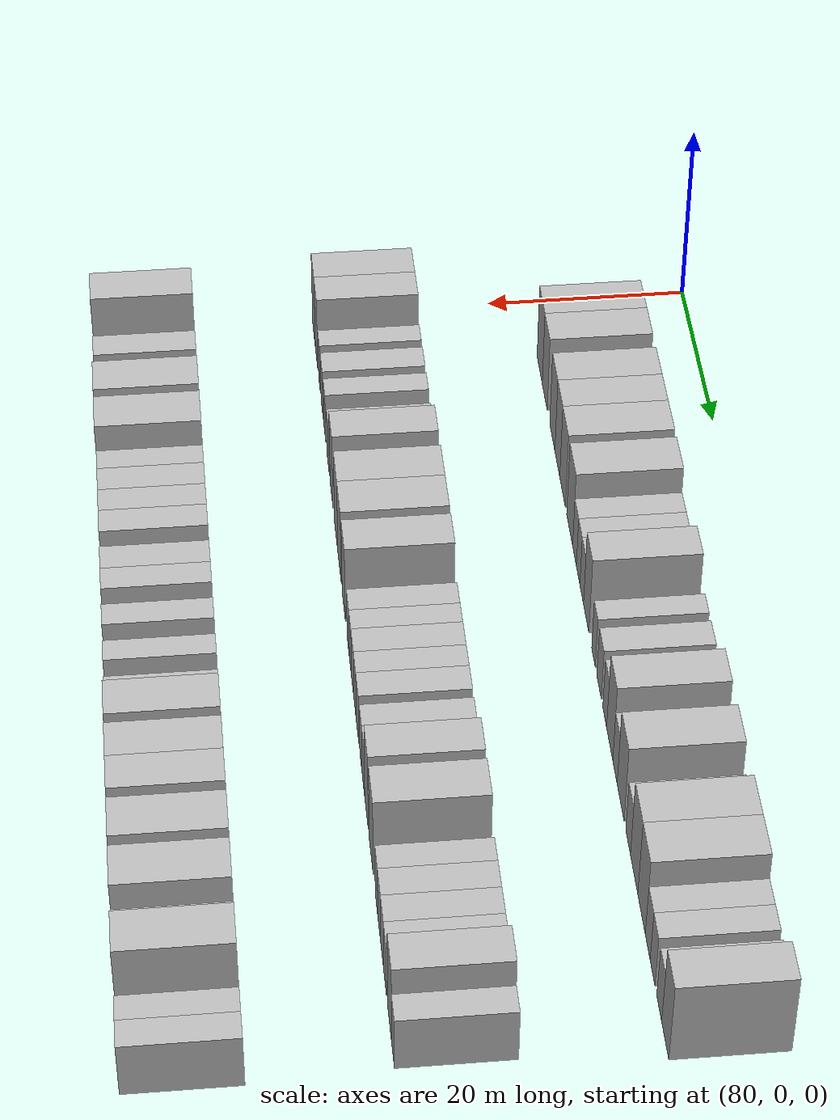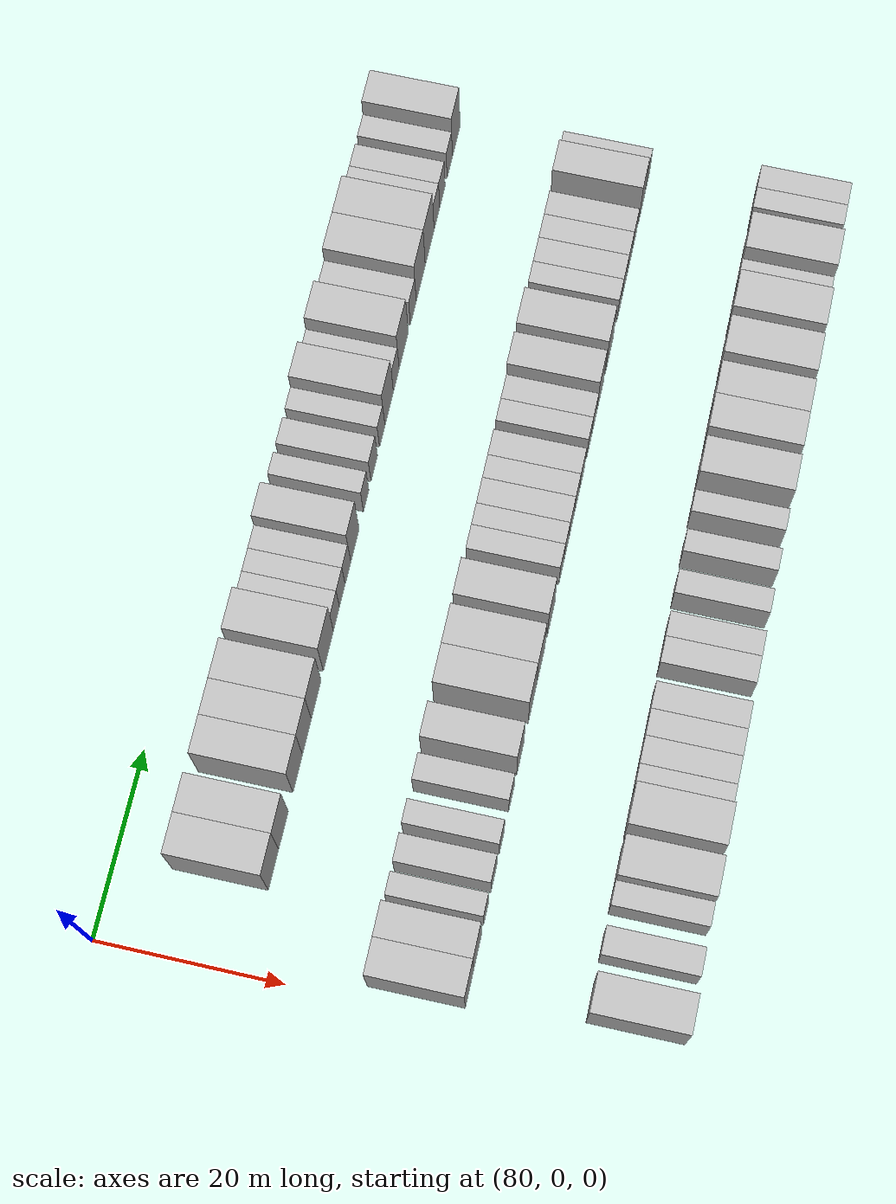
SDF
<sdf version="1.6">
 <world name="default">
  <model name="building_688">
   <static>1</static>
   <pose>91.0000 10.8664 0 0.000000 0.000000 0.000000</pose>
   <link name="link">
    <pose>0 0 4.50 0 0 0</pose>
    <collision name="collision"><geometry><box><size>10.0000 4.2561 9.0000</size></box></geometry></collision>
    <visual name="visual">
     <cast_shadows>0</cast_shadows>
     <geometry><box><size>10.0000 4.2561 9.0000</size></box></geometry>
     <material>
      <script>
       <uri>model://HANNAS_wall/materials/scripts</uri>
       <uri>model://HANNAS_wall/materials/textures</uri>
       <name>vrc/HANNAS_wall</name>
      </script>
     </material>
    </visual>
   </link>
  </model>
  <model name="building_689">
   <static>1</static>
   <pose>91.0000 15.0073 0 0.000000 0.000000 0.000000</pose>
   <link name="link">
    <pose>0 0 4.50 0 0 0</pose>
    <collision name="collision"><geometry><box><size>10.0000 4.0257 9.0000</size></box></geometry></collision>
    <visual name="visual">
     <cast_shadows>0</cast_shadows>
     <geometry><box><size>10.0000 4.0257 9.0000</size></box></geometry>
     <material>
      <script>
       <uri>model://HANNAS_wall/materials/scripts</uri>
       <uri>model://HANNAS_wall/materials/textures</uri>
       <name>vrc/HANNAS_wall</name>
      </script>
     </material>
    </visual>
   </link>
  </model>
  <model name="building_690">
   <static>1</static>
   <pose>91.0000 21.0378 0 0.000000 0.000000 0.000000</pose>
   <link name="link">
    <pose>0 0 4.50 0 0 0</pose>
    <collision name="collision"><geometry><box><size>10.0000 4.0353 9.0000</size></box></geometry></collision>
    <visual name="visual">
     <cast_shadows>0</cast_shadows>
     <geometry><box><size>10.0000 4.0353 9.0000</size></box></geometry>
     <material>
      <script>
       <uri>model://HANNAS_wall/materials/scripts</uri>
       <uri>model://HANNAS_wall/materials/textures</uri>
       <name>vrc/HANNAS_wall</name>
      </script>
     </material>
    </visual>
   </link>
  </model>
  <model name="building_691">
   <static>1</static>
   <pose>91.0000 24.9680 0 0.000000 0.000000 0.000000</pose>
   <link name="link">
    <pose>0 0 4.50 0 0 0</pose>
    <collision name="collision"><geometry><box><size>10.0000 3.8252 9.0000</size></box></geometry></collision>
    <visual name="visual">
     <cast_shadows>0</cast_shadows>
     <geometry><box><size>10.0000 3.8252 9.0000</size></box></geometry>
     <material>
      <script>
       <uri>model://HANNAS_wall/materials/scripts</uri>
       <uri>model://HANNAS_wall/materials/textures</uri>
       <name>vrc/HANNAS_wall</name>
      </script>
     </material>
    </visual>
   </link>
  </model>
  <model name="building_692">
   <static>1</static>
   <pose>91.0000 29.0085 0 0.000000 0.000000 0.000000</pose>
   <link name="link">
    <pose>0 0 4.50 0 0 0</pose>
    <collision name="collision"><geometry><box><size>10.0000 4.2557 9.0000</size></box></geometry></collision>
    <visual name="visual">
     <cast_shadows>0</cast_shadows>
     <geometry><box><size>10.0000 4.2557 9.0000</size></box></geometry>
     <material>
      <script>
       <uri>model://HANNAS_wall/materials/scripts</uri>
       <uri>model://HANNAS_wall/materials/textures</uri>
       <name>vrc/HANNAS_wall</name>
      </script>
     </material>
    </visual>
   </link>
  </model>
  <model name="building_693">
   <static>1</static>
   <pose>91.0000 34.3529 0 0.000000 0.000000 0.000000</pose>
   <link name="link">
    <pose>0 0 4.50 0 0 0</pose>
    <collision name="collision"><geometry><box><size>10.0000 4.4330 9.0000</size></box></geometry></collision>
    <visual name="visual">
     <cast_shadows>0</cast_shadows>
     <geometry><box><size>10.0000 4.4330 9.0000</size></box></geometry>
     <material>
      <script>
       <uri>model://HANNAS_wall/materials/scripts</uri>
       <uri>model://HANNAS_wall/materials/textures</uri>
       <name>vrc/HANNAS_wall</name>
      </script>
     </material>
    </visual>
   </link>
  </model>
  <model name="building_694">
   <static>1</static>
   <pose>91.0000 37.9192 0 0.000000 0.000000 0.000000</pose>
   <link name="link">
    <pose>0 0 3.00 0 0 0</pose>
    <collision name="collision"><geometry><box><size>10.0000 2.6996 6.0000</size></box></geometry></collision>
    <visual name="visual">
     <cast_shadows>0</cast_shadows>
     <geometry><box><size>10.0000 2.6996 6.0000</size></box></geometry>
     <material>
      <script>
       <uri>model://HANNAS_wall/materials/scripts</uri>
       <uri>model://HANNAS_wall/materials/textures</uri>
       <name>vrc/HANNAS_wall</name>
      </script>
     </material>
    </visual>
   </link>
  </model>
  <model name="building_695">
   <static>1</static>
   <pose>91.0000 40.5392 0 0.000000 0.000000 0.000000</pose>
   <link name="link">
    <pose>0 0 3.00 0 0 0</pose>
    <collision name="collision"><geometry><box><size>10.0000 2.5404 6.0000</size></box></geometry></collision>
    <visual name="visual">
     <cast_shadows>0</cast_shadows>
     <geometry><box><size>10.0000 2.5404 6.0000</size></box></geometry>
     <material>
      <script>
       <uri>model://HANNAS_wall/materials/scripts</uri>
       <uri>model://HANNAS_wall/materials/textures</uri>
       <name>vrc/HANNAS_wall</name>
      </script>
     </material>
    </visual>
   </link>
  </model>
  <model name="building_696">
   <static>1</static>
   <pose>91.0000 43.0936 0 0.000000 0.000000 0.000000</pose>
   <link name="link">
    <pose>0 0 3.00 0 0 0</pose>
    <collision name="collision"><geometry><box><size>10.0000 2.5684 6.0000</size></box></geometry></collision>
    <visual name="visual">
     <cast_shadows>0</cast_shadows>
     <geometry><box><size>10.0000 2.5684 6.0000</size></box></geometry>
     <material>
      <script>
       <uri>model://HANNAS_wall/materials/scripts</uri>
       <uri>model://HANNAS_wall/materials/textures</uri>
       <name>vrc/HANNAS_wall</name>
      </script>
     </material>
    </visual>
   </link>
  </model>
  <model name="building_697">
   <static>1</static>
   <pose>91.0000 46.2536 0 0.000000 0.000000 0.000000</pose>
   <link name="link">
    <pose>0 0 4.50 0 0 0</pose>
    <collision name="collision"><geometry><box><size>10.0000 3.7516 9.0000</size></box></geometry></collision>
    <visual name="visual">
     <cast_shadows>0</cast_shadows>
     <geometry><box><size>10.0000 3.7516 9.0000</size></box></geometry>
     <material>
      <script>
       <uri>model://HANNAS_wall/materials/scripts</uri>
       <uri>model://HANNAS_wall/materials/textures</uri>
       <name>vrc/HANNAS_wall</name>
      </script>
     </material>
    </visual>
   </link>
  </model>
  <model name="building_698">
   <static>1</static>
   <pose>91.0000 51.3652 0 0.000000 0.000000 0.000000</pose>
   <link name="link">
    <pose>0 0 3.00 0 0 0</pose>
    <collision name="collision"><geometry><box><size>10.0000 2.4717 6.0000</size></box></geometry></collision>
    <visual name="visual">
     <cast_shadows>0</cast_shadows>
     <geometry><box><size>10.0000 2.4717 6.0000</size></box></geometry>
     <material>
      <script>
       <uri>model://HANNAS_wall/materials/scripts</uri>
       <uri>model://HANNAS_wall/materials/textures</uri>
       <name>vrc/HANNAS_wall</name>
      </script>
     </material>
    </visual>
   </link>
  </model>
  <model name="building_699">
   <static>1</static>
   <pose>91.0000 55.1010 0 0.000000 0.000000 0.000000</pose>
   <link name="link">
    <pose>0 0 3.00 0 0 0</pose>
    <collision name="collision"><geometry><box><size>10.0000 2.9997 6.0000</size></box></geometry></collision>
    <visual name="visual">
     <cast_shadows>0</cast_shadows>
     <geometry><box><size>10.0000 2.9997 6.0000</size></box></geometry>
     <material>
      <script>
       <uri>model://HANNAS_wall/materials/scripts</uri>
       <uri>model://HANNAS_wall/materials/textures</uri>
       <name>vrc/HANNAS_wall</name>
      </script>
     </material>
    </visual>
   </link>
  </model>
  <model name="building_700">
   <static>1</static>
   <pose>91.0000 58.8560 0 0.000000 0.000000 0.000000</pose>
   <link name="link">
    <pose>0 0 3.00 0 0 0</pose>
    <collision name="collision"><geometry><box><size>10.0000 2.5103 6.0000</size></box></geometry></collision>
    <visual name="visual">
     <cast_shadows>0</cast_shadows>
     <geometry><box><size>10.0000 2.5103 6.0000</size></box></geometry>
     <material>
      <script>
       <uri>model://HANNAS_wall/materials/scripts</uri>
       <uri>model://HANNAS_wall/materials/textures</uri>
       <name>vrc/HANNAS_wall</name>
      </script>
     </material>
    </visual>
   </link>
  </model>
  <model name="building_701">
   <static>1</static>
   <pose>91.0000 62.1123 0 0.000000 0.000000 0.000000</pose>
   <link name="link">
    <pose>0 0 4.50 0 0 0</pose>
    <collision name="collision"><geometry><box><size>10.0000 4.0024 9.0000</size></box></geometry></collision>
    <visual name="visual">
     <cast_shadows>0</cast_shadows>
     <geometry><box><size>10.0000 4.0024 9.0000</size></box></geometry>
     <material>
      <script>
       <uri>model://HANNAS_wall/materials/scripts</uri>
       <uri>model://HANNAS_wall/materials/textures</uri>
       <name>vrc/HANNAS_wall</name>
      </script>
     </material>
    </visual>
   </link>
  </model>
  <model name="building_702">
   <static>1</static>
   <pose>91.0000 65.5045 0 0.000000 0.000000 0.000000</pose>
   <link name="link">
    <pose>0 0 3.00 0 0 0</pose>
    <collision name="collision"><geometry><box><size>10.0000 2.7819 6.0000</size></box></geometry></collision>
    <visual name="visual">
     <cast_shadows>0</cast_shadows>
     <geometry><box><size>10.0000 2.7819 6.0000</size></box></geometry>
     <material>
      <script>
       <uri>model://HANNAS_wall/materials/scripts</uri>
       <uri>model://HANNAS_wall/materials/textures</uri>
       <name>vrc/HANNAS_wall</name>
      </script>
     </material>
    </visual>
   </link>
  </model>
  <model name="building_703">
   <static>1</static>
   <pose>91.0000 69.0771 0 0.000000 0.000000 0.000000</pose>
   <link name="link">
    <pose>0 0 4.50 0 0 0</pose>
    <collision name="collision"><geometry><box><size>10.0000 4.3633 9.0000</size></box></geometry></collision>
    <visual name="visual">
     <cast_shadows>0</cast_shadows>
     <geometry><box><size>10.0000 4.3633 9.0000</size></box></geometry>
     <material>
      <script>
       <uri>model://HANNAS_wall/materials/scripts</uri>
       <uri>model://HANNAS_wall/materials/textures</uri>
       <name>vrc/HANNAS_wall</name>
      </script>
     </material>
    </visual>
   </link>
  </model>
  <model name="building_704">
   <static>1</static>
   <pose>91.0000 73.6855 0 0.000000 0.000000 0.000000</pose>
   <link name="link">
    <pose>0 0 3.00 0 0 0</pose>
    <collision name="collision"><geometry><box><size>10.0000 2.8535 6.0000</size></box></geometry></collision>
    <visual name="visual">
     <cast_shadows>0</cast_shadows>
     <geometry><box><size>10.0000 2.8535 6.0000</size></box></geometry>
     <material>
      <script>
       <uri>model://HANNAS_wall/materials/scripts</uri>
       <uri>model://HANNAS_wall/materials/textures</uri>
       <name>vrc/HANNAS_wall</name>
      </script>
     </material>
    </visual>
   </link>
  </model>
  <model name="building_705">
   <static>1</static>
   <pose>91.0000 77.3161 0 0.000000 0.000000 0.000000</pose>
   <link name="link">
    <pose>0 0 4.50 0 0 0</pose>
    <collision name="collision"><geometry><box><size>10.0000 4.4078 9.0000</size></box></geometry></collision>
    <visual name="visual">
     <cast_shadows>0</cast_shadows>
     <geometry><box><size>10.0000 4.4078 9.0000</size></box></geometry>
     <material>
      <script>
       <uri>model://HANNAS_wall/materials/scripts</uri>
       <uri>model://HANNAS_wall/materials/textures</uri>
       <name>vrc/HANNAS_wall</name>
      </script>
     </material>
    </visual>
   </link>
  </model>
  <model name="building_706">
   <static>1</static>
   <pose>91.0000 81.7177 0 0.000000 0.000000 0.000000</pose>
   <link name="link">
    <pose>0 0 4.50 0 0 0</pose>
    <collision name="collision"><geometry><box><size>10.0000 4.3954 9.0000</size></box></geometry></collision>
    <visual name="visual">
     <cast_shadows>0</cast_shadows>
     <geometry><box><size>10.0000 4.3954 9.0000</size></box></geometry>
     <material>
      <script>
       <uri>model://HANNAS_wall/materials/scripts</uri>
       <uri>model://HANNAS_wall/materials/textures</uri>
       <name>vrc/HANNAS_wall</name>
      </script>
     </material>
    </visual>
   </link>
  </model>
  <model name="building_707">
   <static>1</static>
   <pose>91.0000 85.3039 0 0.000000 0.000000 0.000000</pose>
   <link name="link">
    <pose>0 0 3.00 0 0 0</pose>
    <collision name="collision"><geometry><box><size>10.0000 2.7769 6.0000</size></box></geometry></collision>
    <visual name="visual">
     <cast_shadows>0</cast_shadows>
     <geometry><box><size>10.0000 2.7769 6.0000</size></box></geometry>
     <material>
      <script>
       <uri>model://HANNAS_wall/materials/scripts</uri>
       <uri>model://HANNAS_wall/materials/textures</uri>
       <name>vrc/HANNAS_wall</name>
      </script>
     </material>
    </visual>
   </link>
  </model>
  <model name="building_708">
   <static>1</static>
   <pose>91.0000 88.0586 0 0.000000 0.000000 0.000000</pose>
   <link name="link">
    <pose>0 0 3.00 0 0 0</pose>
    <collision name="collision"><geometry><box><size>10.0000 2.7326 6.0000</size></box></geometry></collision>
    <visual name="visual">
     <cast_shadows>0</cast_shadows>
     <geometry><box><size>10.0000 2.7326 6.0000</size></box></geometry>
     <material>
      <script>
       <uri>model://HANNAS_wall/materials/scripts</uri>
       <uri>model://HANNAS_wall/materials/textures</uri>
       <name>vrc/HANNAS_wall</name>
      </script>
     </material>
    </visual>
   </link>
  </model>
  <model name="building_709">
   <static>1</static>
   <pose>91.0000 91.7700 0 0.000000 0.000000 0.000000</pose>
   <link name="link">
    <pose>0 0 3.00 0 0 0</pose>
    <collision name="collision"><geometry><box><size>10.0000 2.6901 6.0000</size></box></geometry></collision>
    <visual name="visual">
     <cast_shadows>0</cast_shadows>
     <geometry><box><size>10.0000 2.6901 6.0000</size></box></geometry>
     <material>
      <script>
       <uri>model://HANNAS_wall/materials/scripts</uri>
       <uri>model://HANNAS_wall/materials/textures</uri>
       <name>vrc/HANNAS_wall</name>
      </script>
     </material>
    </visual>
   </link>
  </model>
  <model name="building_710">
   <static>1</static>
   <pose>91.0000 95.0679 0 0.000000 0.000000 0.000000</pose>
   <link name="link">
    <pose>0 0 4.50 0 0 0</pose>
    <collision name="collision"><geometry><box><size>10.0000 3.9057 9.0000</size></box></geometry></collision>
    <visual name="visual">
     <cast_shadows>0</cast_shadows>
     <geometry><box><size>10.0000 3.9057 9.0000</size></box></geometry>
     <material>
      <script>
       <uri>model://HANNAS_wall/materials/scripts</uri>
       <uri>model://HANNAS_wall/materials/textures</uri>
       <name>vrc/HANNAS_wall</name>
      </script>
     </material>
    </visual>
   </link>
  </model>
  <model name="building_869">
   <static>1</static>
   <pose>113.0000 3.4708 0 0.000000 0.000000 0.000000</pose>
   <link name="link">
    <pose>0 0 4.50 0 0 0</pose>
    <collision name="collision"><geometry><box><size>10.0000 3.8052 9.0000</size></box></geometry></collision>
    <visual name="visual">
     <cast_shadows>0</cast_shadows>
     <geometry><box><size>10.0000 3.8052 9.0000</size></box></geometry>
     <material>
      <script>
       <uri>model://HANNAS_wall/materials/scripts</uri>
       <uri>model://HANNAS_wall/materials/textures</uri>
       <name>vrc/HANNAS_wall</name>
      </script>
     </material>
    </visual>
   </link>
  </model>
  <model name="building_870">
   <static>1</static>
   <pose>113.0000 7.1748 0 0.000000 0.000000 0.000000</pose>
   <link name="link">
    <pose>0 0 4.50 0 0 0</pose>
    <collision name="collision"><geometry><box><size>10.0000 3.6027 9.0000</size></box></geometry></collision>
    <visual name="visual">
     <cast_shadows>0</cast_shadows>
     <geometry><box><size>10.0000 3.6027 9.0000</size></box></geometry>
     <material>
      <script>
       <uri>model://HANNAS_wall/materials/scripts</uri>
       <uri>model://HANNAS_wall/materials/textures</uri>
       <name>vrc/HANNAS_wall</name>
      </script>
     </material>
    </visual>
   </link>
  </model>
  <model name="building_871">
   <static>1</static>
   <pose>113.0000 11.1789 0 0.000000 0.000000 0.000000</pose>
   <link name="link">
    <pose>0 0 3.00 0 0 0</pose>
    <collision name="collision"><geometry><box><size>10.0000 2.4055 6.0000</size></box></geometry></collision>
    <visual name="visual">
     <cast_shadows>0</cast_shadows>
     <geometry><box><size>10.0000 2.4055 6.0000</size></box></geometry>
     <material>
      <script>
       <uri>model://HANNAS_wall/materials/scripts</uri>
       <uri>model://HANNAS_wall/materials/textures</uri>
       <name>vrc/HANNAS_wall</name>
      </script>
     </material>
    </visual>
   </link>
  </model>
  <model name="building_872">
   <static>1</static>
   <pose>113.0000 14.8433 0 0.000000 0.000000 0.000000</pose>
   <link name="link">
    <pose>0 0 3.00 0 0 0</pose>
    <collision name="collision"><geometry><box><size>10.0000 2.9233 6.0000</size></box></geometry></collision>
    <visual name="visual">
     <cast_shadows>0</cast_shadows>
     <geometry><box><size>10.0000 2.9233 6.0000</size></box></geometry>
     <material>
      <script>
       <uri>model://HANNAS_wall/materials/scripts</uri>
       <uri>model://HANNAS_wall/materials/textures</uri>
       <name>vrc/HANNAS_wall</name>
      </script>
     </material>
    </visual>
   </link>
  </model>
  <model name="building_873">
   <static>1</static>
   <pose>113.0000 18.5649 0 0.000000 0.000000 0.000000</pose>
   <link name="link">
    <pose>0 0 3.00 0 0 0</pose>
    <collision name="collision"><geometry><box><size>10.0000 2.5199 6.0000</size></box></geometry></collision>
    <visual name="visual">
     <cast_shadows>0</cast_shadows>
     <geometry><box><size>10.0000 2.5199 6.0000</size></box></geometry>
     <material>
      <script>
       <uri>model://HANNAS_wall/materials/scripts</uri>
       <uri>model://HANNAS_wall/materials/textures</uri>
       <name>vrc/HANNAS_wall</name>
      </script>
     </material>
    </visual>
   </link>
  </model>
  <model name="building_874">
   <static>1</static>
   <pose>113.0000 23.2183 0 0.000000 0.000000 0.000000</pose>
   <link name="link">
    <pose>0 0 3.00 0 0 0</pose>
    <collision name="collision"><geometry><box><size>10.0000 2.7868 6.0000</size></box></geometry></collision>
    <visual name="visual">
     <cast_shadows>0</cast_shadows>
     <geometry><box><size>10.0000 2.7868 6.0000</size></box></geometry>
     <material>
      <script>
       <uri>model://HANNAS_wall/materials/scripts</uri>
       <uri>model://HANNAS_wall/materials/textures</uri>
       <name>vrc/HANNAS_wall</name>
      </script>
     </material>
    </visual>
   </link>
  </model>
  <model name="building_875">
   <static>1</static>
   <pose>113.0000 27.4544 0 0.000000 0.000000 0.000000</pose>
   <link name="link">
    <pose>0 0 4.50 0 0 0</pose>
    <collision name="collision"><geometry><box><size>10.0000 3.6856 9.0000</size></box></geometry></collision>
    <visual name="visual">
     <cast_shadows>0</cast_shadows>
     <geometry><box><size>10.0000 3.6856 9.0000</size></box></geometry>
     <material>
      <script>
       <uri>model://HANNAS_wall/materials/scripts</uri>
       <uri>model://HANNAS_wall/materials/textures</uri>
       <name>vrc/HANNAS_wall</name>
      </script>
     </material>
    </visual>
   </link>
  </model>
  <model name="building_876">
   <static>1</static>
   <pose>113.0000 33.3846 0 0.000000 0.000000 0.000000</pose>
   <link name="link">
    <pose>0 0 4.50 0 0 0</pose>
    <collision name="collision"><geometry><box><size>10.0000 4.1746 9.0000</size></box></geometry></collision>
    <visual name="visual">
     <cast_shadows>0</cast_shadows>
     <geometry><box><size>10.0000 4.1746 9.0000</size></box></geometry>
     <material>
      <script>
       <uri>model://HANNAS_wall/materials/scripts</uri>
       <uri>model://HANNAS_wall/materials/textures</uri>
       <name>vrc/HANNAS_wall</name>
      </script>
     </material>
    </visual>
   </link>
  </model>
  <model name="building_877">
   <static>1</static>
   <pose>113.0000 37.5929 0 0.000000 0.000000 0.000000</pose>
   <link name="link">
    <pose>0 0 4.50 0 0 0</pose>
    <collision name="collision"><geometry><box><size>10.0000 4.2421 9.0000</size></box></geometry></collision>
    <visual name="visual">
     <cast_shadows>0</cast_shadows>
     <geometry><box><size>10.0000 4.2421 9.0000</size></box></geometry>
     <material>
      <script>
       <uri>model://HANNAS_wall/materials/scripts</uri>
       <uri>model://HANNAS_wall/materials/textures</uri>
       <name>vrc/HANNAS_wall</name>
      </script>
     </material>
    </visual>
   </link>
  </model>
  <model name="building_878">
   <static>1</static>
   <pose>113.0000 42.6884 0 0.000000 0.000000 0.000000</pose>
   <link name="link">
    <pose>0 0 4.50 0 0 0</pose>
    <collision name="collision"><geometry><box><size>10.0000 3.9489 9.0000</size></box></geometry></collision>
    <visual name="visual">
     <cast_shadows>0</cast_shadows>
     <geometry><box><size>10.0000 3.9489 9.0000</size></box></geometry>
     <material>
      <script>
       <uri>model://HANNAS_wall/materials/scripts</uri>
       <uri>model://HANNAS_wall/materials/textures</uri>
       <name>vrc/HANNAS_wall</name>
      </script>
     </material>
    </visual>
   </link>
  </model>
  <model name="building_879">
   <static>1</static>
   <pose>113.0000 47.9947 0 0.000000 0.000000 0.000000</pose>
   <link name="link">
    <pose>0 0 3.00 0 0 0</pose>
    <collision name="collision"><geometry><box><size>10.0000 2.6638 6.0000</size></box></geometry></collision>
    <visual name="visual">
     <cast_shadows>0</cast_shadows>
     <geometry><box><size>10.0000 2.6638 6.0000</size></box></geometry>
     <material>
      <script>
       <uri>model://HANNAS_wall/materials/scripts</uri>
       <uri>model://HANNAS_wall/materials/textures</uri>
       <name>vrc/HANNAS_wall</name>
      </script>
     </material>
    </visual>
   </link>
  </model>
  <model name="building_880">
   <static>1</static>
   <pose>113.0000 50.5279 0 0.000000 0.000000 0.000000</pose>
   <link name="link">
    <pose>0 0 3.00 0 0 0</pose>
    <collision name="collision"><geometry><box><size>10.0000 2.4026 6.0000</size></box></geometry></collision>
    <visual name="visual">
     <cast_shadows>0</cast_shadows>
     <geometry><box><size>10.0000 2.4026 6.0000</size></box></geometry>
     <material>
      <script>
       <uri>model://HANNAS_wall/materials/scripts</uri>
       <uri>model://HANNAS_wall/materials/textures</uri>
       <name>vrc/HANNAS_wall</name>
      </script>
     </material>
    </visual>
   </link>
  </model>
  <model name="building_881">
   <static>1</static>
   <pose>113.0000 53.1732 0 0.000000 0.000000 0.000000</pose>
   <link name="link">
    <pose>0 0 3.00 0 0 0</pose>
    <collision name="collision"><geometry><box><size>10.0000 2.8879 6.0000</size></box></geometry></collision>
    <visual name="visual">
     <cast_shadows>0</cast_shadows>
     <geometry><box><size>10.0000 2.8879 6.0000</size></box></geometry>
     <material>
      <script>
       <uri>model://HANNAS_wall/materials/scripts</uri>
       <uri>model://HANNAS_wall/materials/textures</uri>
       <name>vrc/HANNAS_wall</name>
      </script>
     </material>
    </visual>
   </link>
  </model>
  <model name="building_882">
   <static>1</static>
   <pose>113.0000 55.9124 0 0.000000 0.000000 0.000000</pose>
   <link name="link">
    <pose>0 0 3.00 0 0 0</pose>
    <collision name="collision"><geometry><box><size>10.0000 2.5905 6.0000</size></box></geometry></collision>
    <visual name="visual">
     <cast_shadows>0</cast_shadows>
     <geometry><box><size>10.0000 2.5905 6.0000</size></box></geometry>
     <material>
      <script>
       <uri>model://HANNAS_wall/materials/scripts</uri>
       <uri>model://HANNAS_wall/materials/textures</uri>
       <name>vrc/HANNAS_wall</name>
      </script>
     </material>
    </visual>
   </link>
  </model>
  <model name="building_883">
   <static>1</static>
   <pose>113.0000 58.6577 0 0.000000 0.000000 0.000000</pose>
   <link name="link">
    <pose>0 0 3.00 0 0 0</pose>
    <collision name="collision"><geometry><box><size>10.0000 2.9001 6.0000</size></box></geometry></collision>
    <visual name="visual">
     <cast_shadows>0</cast_shadows>
     <geometry><box><size>10.0000 2.9001 6.0000</size></box></geometry>
     <material>
      <script>
       <uri>model://HANNAS_wall/materials/scripts</uri>
       <uri>model://HANNAS_wall/materials/textures</uri>
       <name>vrc/HANNAS_wall</name>
      </script>
     </material>
    </visual>
   </link>
  </model>
  <model name="building_884">
   <static>1</static>
   <pose>113.0000 62.3919 0 0.000000 0.000000 0.000000</pose>
   <link name="link">
    <pose>0 0 3.00 0 0 0</pose>
    <collision name="collision"><geometry><box><size>10.0000 2.5681 6.0000</size></box></geometry></collision>
    <visual name="visual">
     <cast_shadows>0</cast_shadows>
     <geometry><box><size>10.0000 2.5681 6.0000</size></box></geometry>
     <material>
      <script>
       <uri>model://HANNAS_wall/materials/scripts</uri>
       <uri>model://HANNAS_wall/materials/textures</uri>
       <name>vrc/HANNAS_wall</name>
      </script>
     </material>
    </visual>
   </link>
  </model>
  <model name="building_885">
   <static>1</static>
   <pose>113.0000 65.0577 0 0.000000 0.000000 0.000000</pose>
   <link name="link">
    <pose>0 0 3.00 0 0 0</pose>
    <collision name="collision"><geometry><box><size>10.0000 2.7636 6.0000</size></box></geometry></collision>
    <visual name="visual">
     <cast_shadows>0</cast_shadows>
     <geometry><box><size>10.0000 2.7636 6.0000</size></box></geometry>
     <material>
      <script>
       <uri>model://HANNAS_wall/materials/scripts</uri>
       <uri>model://HANNAS_wall/materials/textures</uri>
       <name>vrc/HANNAS_wall</name>
      </script>
     </material>
    </visual>
   </link>
  </model>
  <model name="building_886">
   <static>1</static>
   <pose>113.0000 68.3102 0 0.000000 0.000000 0.000000</pose>
   <link name="link">
    <pose>0 0 4.50 0 0 0</pose>
    <collision name="collision"><geometry><box><size>10.0000 3.7414 9.0000</size></box></geometry></collision>
    <visual name="visual">
     <cast_shadows>0</cast_shadows>
     <geometry><box><size>10.0000 3.7414 9.0000</size></box></geometry>
     <material>
      <script>
       <uri>model://HANNAS_wall/materials/scripts</uri>
       <uri>model://HANNAS_wall/materials/textures</uri>
       <name>vrc/HANNAS_wall</name>
      </script>
     </material>
    </visual>
   </link>
  </model>
  <model name="building_887">
   <static>1</static>
   <pose>113.0000 73.2767 0 0.000000 0.000000 0.000000</pose>
   <link name="link">
    <pose>0 0 4.50 0 0 0</pose>
    <collision name="collision"><geometry><box><size>10.0000 4.1917 9.0000</size></box></geometry></collision>
    <visual name="visual">
     <cast_shadows>0</cast_shadows>
     <geometry><box><size>10.0000 4.1917 9.0000</size></box></geometry>
     <material>
      <script>
       <uri>model://HANNAS_wall/materials/scripts</uri>
       <uri>model://HANNAS_wall/materials/textures</uri>
       <name>vrc/HANNAS_wall</name>
      </script>
     </material>
    </visual>
   </link>
  </model>
  <model name="building_888">
   <static>1</static>
   <pose>113.0000 78.6456 0 0.000000 0.000000 0.000000</pose>
   <link name="link">
    <pose>0 0 3.00 0 0 0</pose>
    <collision name="collision"><geometry><box><size>10.0000 2.5460 6.0000</size></box></geometry></collision>
    <visual name="visual">
     <cast_shadows>0</cast_shadows>
     <geometry><box><size>10.0000 2.5460 6.0000</size></box></geometry>
     <material>
      <script>
       <uri>model://HANNAS_wall/materials/scripts</uri>
       <uri>model://HANNAS_wall/materials/textures</uri>
       <name>vrc/HANNAS_wall</name>
      </script>
     </material>
    </visual>
   </link>
  </model>
  <model name="building_889">
   <static>1</static>
   <pose>113.0000 81.3672 0 0.000000 0.000000 0.000000</pose>
   <link name="link">
    <pose>0 0 3.00 0 0 0</pose>
    <collision name="collision"><geometry><box><size>10.0000 2.8972 6.0000</size></box></geometry></collision>
    <visual name="visual">
     <cast_shadows>0</cast_shadows>
     <geometry><box><size>10.0000 2.8972 6.0000</size></box></geometry>
     <material>
      <script>
       <uri>model://HANNAS_wall/materials/scripts</uri>
       <uri>model://HANNAS_wall/materials/textures</uri>
       <name>vrc/HANNAS_wall</name>
      </script>
     </material>
    </visual>
   </link>
  </model>
  <model name="building_890">
   <static>1</static>
   <pose>113.0000 84.2317 0 0.000000 0.000000 0.000000</pose>
   <link name="link">
    <pose>0 0 3.00 0 0 0</pose>
    <collision name="collision"><geometry><box><size>10.0000 2.8318 6.0000</size></box></geometry></collision>
    <visual name="visual">
     <cast_shadows>0</cast_shadows>
     <geometry><box><size>10.0000 2.8318 6.0000</size></box></geometry>
     <material>
      <script>
       <uri>model://HANNAS_wall/materials/scripts</uri>
       <uri>model://HANNAS_wall/materials/textures</uri>
       <name>vrc/HANNAS_wall</name>
      </script>
     </material>
    </visual>
   </link>
  </model>
  <model name="building_891">
   <static>1</static>
   <pose>113.0000 87.0518 0 0.000000 0.000000 0.000000</pose>
   <link name="link">
    <pose>0 0 3.00 0 0 0</pose>
    <collision name="collision"><geometry><box><size>10.0000 2.8083 6.0000</size></box></geometry></collision>
    <visual name="visual">
     <cast_shadows>0</cast_shadows>
     <geometry><box><size>10.0000 2.8083 6.0000</size></box></geometry>
     <material>
      <script>
       <uri>model://HANNAS_wall/materials/scripts</uri>
       <uri>model://HANNAS_wall/materials/textures</uri>
       <name>vrc/HANNAS_wall</name>
      </script>
     </material>
    </visual>
   </link>
  </model>
  <model name="building_892">
   <static>1</static>
   <pose>113.0000 91.3141 0 0.000000 0.000000 0.000000</pose>
   <link name="link">
    <pose>0 0 4.50 0 0 0</pose>
    <collision name="collision"><geometry><box><size>10.0000 3.7164 9.0000</size></box></geometry></collision>
    <visual name="visual">
     <cast_shadows>0</cast_shadows>
     <geometry><box><size>10.0000 3.7164 9.0000</size></box></geometry>
     <material>
      <script>
       <uri>model://HANNAS_wall/materials/scripts</uri>
       <uri>model://HANNAS_wall/materials/textures</uri>
       <name>vrc/HANNAS_wall</name>
      </script>
     </material>
    </visual>
   </link>
  </model>
  <model name="building_893">
   <static>1</static>
   <pose>113.0000 94.5332 0 0.000000 0.000000 0.000000</pose>
   <link name="link">
    <pose>0 0 3.00 0 0 0</pose>
    <collision name="collision"><geometry><box><size>10.0000 2.7217 6.0000</size></box></geometry></collision>
    <visual name="visual">
     <cast_shadows>0</cast_shadows>
     <geometry><box><size>10.0000 2.7217 6.0000</size></box></geometry>
     <material>
      <script>
       <uri>model://HANNAS_wall/materials/scripts</uri>
       <uri>model://HANNAS_wall/materials/textures</uri>
       <name>vrc/HANNAS_wall</name>
      </script>
     </material>
    </visual>
   </link>
  </model>
  <model name="building_1055">
   <static>1</static>
   <pose>135.0000 4.8142 0 0.000000 0.000000 0.000000</pose>
   <link name="link">
    <pose>0 0 4.50 0 0 0</pose>
    <collision name="collision"><geometry><box><size>10.0000 4.0786 9.0000</size></box></geometry></collision>
    <visual name="visual">
     <cast_shadows>0</cast_shadows>
     <geometry><box><size>10.0000 4.0786 9.0000</size></box></geometry>
     <material>
      <script>
       <uri>model://HANNAS_wall/materials/scripts</uri>
       <uri>model://HANNAS_wall/materials/textures</uri>
       <name>vrc/HANNAS_wall</name>
      </script>
     </material>
    </visual>
   </link>
  </model>
  <model name="building_1056">
   <static>1</static>
   <pose>135.0000 10.3226 0 0.000000 0.000000 0.000000</pose>
   <link name="link">
    <pose>0 0 3.00 0 0 0</pose>
    <collision name="collision"><geometry><box><size>10.0000 2.9382 6.0000</size></box></geometry></collision>
    <visual name="visual">
     <cast_shadows>0</cast_shadows>
     <geometry><box><size>10.0000 2.9382 6.0000</size></box></geometry>
     <material>
      <script>
       <uri>model://HANNAS_wall/materials/scripts</uri>
       <uri>model://HANNAS_wall/materials/textures</uri>
       <name>vrc/HANNAS_wall</name>
      </script>
     </material>
    </visual>
   </link>
  </model>
  <model name="building_1057">
   <static>1</static>
   <pose>135.0000 15.0629 0 0.000000 0.000000 0.000000</pose>
   <link name="link">
    <pose>0 0 3.00 0 0 0</pose>
    <collision name="collision"><geometry><box><size>10.0000 2.5423 6.0000</size></box></geometry></collision>
    <visual name="visual">
     <cast_shadows>0</cast_shadows>
     <geometry><box><size>10.0000 2.5423 6.0000</size></box></geometry>
     <material>
      <script>
       <uri>model://HANNAS_wall/materials/scripts</uri>
       <uri>model://HANNAS_wall/materials/textures</uri>
       <name>vrc/HANNAS_wall</name>
      </script>
     </material>
    </visual>
   </link>
  </model>
  <model name="building_1058">
   <static>1</static>
   <pose>135.0000 18.4167 0 0.000000 0.000000 0.000000</pose>
   <link name="link">
    <pose>0 0 4.50 0 0 0</pose>
    <collision name="collision"><geometry><box><size>10.0000 4.1653 9.0000</size></box></geometry></collision>
    <visual name="visual">
     <cast_shadows>0</cast_shadows>
     <geometry><box><size>10.0000 4.1653 9.0000</size></box></geometry>
     <material>
      <script>
       <uri>model://HANNAS_wall/materials/scripts</uri>
       <uri>model://HANNAS_wall/materials/textures</uri>
       <name>vrc/HANNAS_wall</name>
      </script>
     </material>
    </visual>
   </link>
  </model>
  <model name="building_1059">
   <static>1</static>
   <pose>135.0000 23.6828 0 0.000000 0.000000 0.000000</pose>
   <link name="link">
    <pose>0 0 4.50 0 0 0</pose>
    <collision name="collision"><geometry><box><size>10.0000 4.3668 9.0000</size></box></geometry></collision>
    <visual name="visual">
     <cast_shadows>0</cast_shadows>
     <geometry><box><size>10.0000 4.3668 9.0000</size></box></geometry>
     <material>
      <script>
       <uri>model://HANNAS_wall/materials/scripts</uri>
       <uri>model://HANNAS_wall/materials/textures</uri>
       <name>vrc/HANNAS_wall</name>
      </script>
     </material>
    </visual>
   </link>
  </model>
  <model name="building_1060">
   <static>1</static>
   <pose>135.0000 27.1118 0 0.000000 0.000000 0.000000</pose>
   <link name="link">
    <pose>0 0 3.00 0 0 0</pose>
    <collision name="collision"><geometry><box><size>10.0000 2.4912 6.0000</size></box></geometry></collision>
    <visual name="visual">
     <cast_shadows>0</cast_shadows>
     <geometry><box><size>10.0000 2.4912 6.0000</size></box></geometry>
     <material>
      <script>
       <uri>model://HANNAS_wall/materials/scripts</uri>
       <uri>model://HANNAS_wall/materials/textures</uri>
       <name>vrc/HANNAS_wall</name>
      </script>
     </material>
    </visual>
   </link>
  </model>
  <model name="building_1061">
   <static>1</static>
   <pose>135.0000 29.8333 0 0.000000 0.000000 0.000000</pose>
   <link name="link">
    <pose>0 0 3.00 0 0 0</pose>
    <collision name="collision"><geometry><box><size>10.0000 2.9517 6.0000</size></box></geometry></collision>
    <visual name="visual">
     <cast_shadows>0</cast_shadows>
     <geometry><box><size>10.0000 2.9517 6.0000</size></box></geometry>
     <material>
      <script>
       <uri>model://HANNAS_wall/materials/scripts</uri>
       <uri>model://HANNAS_wall/materials/textures</uri>
       <name>vrc/HANNAS_wall</name>
      </script>
     </material>
    </visual>
   </link>
  </model>
  <model name="building_1062">
   <static>1</static>
   <pose>135.0000 32.7348 0 0.000000 0.000000 0.000000</pose>
   <link name="link">
    <pose>0 0 3.00 0 0 0</pose>
    <collision name="collision"><geometry><box><size>10.0000 2.8513 6.0000</size></box></geometry></collision>
    <visual name="visual">
     <cast_shadows>0</cast_shadows>
     <geometry><box><size>10.0000 2.8513 6.0000</size></box></geometry>
     <material>
      <script>
       <uri>model://HANNAS_wall/materials/scripts</uri>
       <uri>model://HANNAS_wall/materials/textures</uri>
       <name>vrc/HANNAS_wall</name>
      </script>
     </material>
    </visual>
   </link>
  </model>
  <model name="building_1063">
   <static>1</static>
   <pose>135.0000 35.6096 0 0.000000 0.000000 0.000000</pose>
   <link name="link">
    <pose>0 0 3.00 0 0 0</pose>
    <collision name="collision"><geometry><box><size>10.0000 2.8984 6.0000</size></box></geometry></collision>
    <visual name="visual">
     <cast_shadows>0</cast_shadows>
     <geometry><box><size>10.0000 2.8984 6.0000</size></box></geometry>
     <material>
      <script>
       <uri>model://HANNAS_wall/materials/scripts</uri>
       <uri>model://HANNAS_wall/materials/textures</uri>
       <name>vrc/HANNAS_wall</name>
      </script>
     </material>
    </visual>
   </link>
  </model>
  <model name="building_1064">
   <static>1</static>
   <pose>135.0000 40.4918 0 0.000000 0.000000 0.000000</pose>
   <link name="link">
    <pose>0 0 3.00 0 0 0</pose>
    <collision name="collision"><geometry><box><size>10.0000 2.8662 6.0000</size></box></geometry></collision>
    <visual name="visual">
     <cast_shadows>0</cast_shadows>
     <geometry><box><size>10.0000 2.8662 6.0000</size></box></geometry>
     <material>
      <script>
       <uri>model://HANNAS_wall/materials/scripts</uri>
       <uri>model://HANNAS_wall/materials/textures</uri>
       <name>vrc/HANNAS_wall</name>
      </script>
     </material>
    </visual>
   </link>
  </model>
  <model name="building_1065">
   <static>1</static>
   <pose>135.0000 43.2756 0 0.000000 0.000000 0.000000</pose>
   <link name="link">
    <pose>0 0 3.00 0 0 0</pose>
    <collision name="collision"><geometry><box><size>10.0000 2.7014 6.0000</size></box></geometry></collision>
    <visual name="visual">
     <cast_shadows>0</cast_shadows>
     <geometry><box><size>10.0000 2.7014 6.0000</size></box></geometry>
     <material>
      <script>
       <uri>model://HANNAS_wall/materials/scripts</uri>
       <uri>model://HANNAS_wall/materials/textures</uri>
       <name>vrc/HANNAS_wall</name>
      </script>
     </material>
    </visual>
   </link>
  </model>
  <model name="building_1066">
   <static>1</static>
   <pose>135.0000 47.9310 0 0.000000 0.000000 0.000000</pose>
   <link name="link">
    <pose>0 0 3.00 0 0 0</pose>
    <collision name="collision"><geometry><box><size>10.0000 2.6093 6.0000</size></box></geometry></collision>
    <visual name="visual">
     <cast_shadows>0</cast_shadows>
     <geometry><box><size>10.0000 2.6093 6.0000</size></box></geometry>
     <material>
      <script>
       <uri>model://HANNAS_wall/materials/scripts</uri>
       <uri>model://HANNAS_wall/materials/textures</uri>
       <name>vrc/HANNAS_wall</name>
      </script>
     </material>
    </visual>
   </link>
  </model>
  <model name="building_1067">
   <static>1</static>
   <pose>135.0000 52.4655 0 0.000000 0.000000 0.000000</pose>
   <link name="link">
    <pose>0 0 3.00 0 0 0</pose>
    <collision name="collision"><geometry><box><size>10.0000 2.4597 6.0000</size></box></geometry></collision>
    <visual name="visual">
     <cast_shadows>0</cast_shadows>
     <geometry><box><size>10.0000 2.4597 6.0000</size></box></geometry>
     <material>
      <script>
       <uri>model://HANNAS_wall/materials/scripts</uri>
       <uri>model://HANNAS_wall/materials/textures</uri>
       <name>vrc/HANNAS_wall</name>
      </script>
     </material>
    </visual>
   </link>
  </model>
  <model name="building_1068">
   <static>1</static>
   <pose>135.0000 56.9046 0 0.000000 0.000000 0.000000</pose>
   <link name="link">
    <pose>0 0 3.00 0 0 0</pose>
    <collision name="collision"><geometry><box><size>10.0000 2.4186 6.0000</size></box></geometry></collision>
    <visual name="visual">
     <cast_shadows>0</cast_shadows>
     <geometry><box><size>10.0000 2.4186 6.0000</size></box></geometry>
     <material>
      <script>
       <uri>model://HANNAS_wall/materials/scripts</uri>
       <uri>model://HANNAS_wall/materials/textures</uri>
       <name>vrc/HANNAS_wall</name>
      </script>
     </material>
    </visual>
   </link>
  </model>
  <model name="building_1069">
   <static>1</static>
   <pose>135.0000 61.1304 0 0.000000 0.000000 0.000000</pose>
   <link name="link">
    <pose>0 0 4.50 0 0 0</pose>
    <collision name="collision"><geometry><box><size>10.0000 4.0329 9.0000</size></box></geometry></collision>
    <visual name="visual">
     <cast_shadows>0</cast_shadows>
     <geometry><box><size>10.0000 4.0329 9.0000</size></box></geometry>
     <material>
      <script>
       <uri>model://HANNAS_wall/materials/scripts</uri>
       <uri>model://HANNAS_wall/materials/textures</uri>
       <name>vrc/HANNAS_wall</name>
      </script>
     </material>
    </visual>
   </link>
  </model>
  <model name="building_1070">
   <static>1</static>
   <pose>135.0000 66.0716 0 0.000000 0.000000 0.000000</pose>
   <link name="link">
    <pose>0 0 4.50 0 0 0</pose>
    <collision name="collision"><geometry><box><size>10.0000 3.8494 9.0000</size></box></geometry></collision>
    <visual name="visual">
     <cast_shadows>0</cast_shadows>
     <geometry><box><size>10.0000 3.8494 9.0000</size></box></geometry>
     <material>
      <script>
       <uri>model://HANNAS_wall/materials/scripts</uri>
       <uri>model://HANNAS_wall/materials/textures</uri>
       <name>vrc/HANNAS_wall</name>
      </script>
     </material>
    </visual>
   </link>
  </model>
  <model name="building_1071">
   <static>1</static>
   <pose>135.0000 69.8645 0 0.000000 0.000000 0.000000</pose>
   <link name="link">
    <pose>0 0 4.50 0 0 0</pose>
    <collision name="collision"><geometry><box><size>10.0000 3.7364 9.0000</size></box></geometry></collision>
    <visual name="visual">
     <cast_shadows>0</cast_shadows>
     <geometry><box><size>10.0000 3.7364 9.0000</size></box></geometry>
     <material>
      <script>
       <uri>model://HANNAS_wall/materials/scripts</uri>
       <uri>model://HANNAS_wall/materials/textures</uri>
       <name>vrc/HANNAS_wall</name>
      </script>
     </material>
    </visual>
   </link>
  </model>
  <model name="building_1072">
   <static>1</static>
   <pose>135.0000 74.8859 0 0.000000 0.000000 0.000000</pose>
   <link name="link">
    <pose>0 0 4.50 0 0 0</pose>
    <collision name="collision"><geometry><box><size>10.0000 4.3065 9.0000</size></box></geometry></collision>
    <visual name="visual">
     <cast_shadows>0</cast_shadows>
     <geometry><box><size>10.0000 4.3065 9.0000</size></box></geometry>
     <material>
      <script>
       <uri>model://HANNAS_wall/materials/scripts</uri>
       <uri>model://HANNAS_wall/materials/textures</uri>
       <name>vrc/HANNAS_wall</name>
      </script>
     </material>
    </visual>
   </link>
  </model>
  <model name="building_1073">
   <static>1</static>
   <pose>135.0000 80.2022 0 0.000000 0.000000 0.000000</pose>
   <link name="link">
    <pose>0 0 4.50 0 0 0</pose>
    <collision name="collision"><geometry><box><size>10.0000 4.3261 9.0000</size></box></geometry></collision>
    <visual name="visual">
     <cast_shadows>0</cast_shadows>
     <geometry><box><size>10.0000 4.3261 9.0000</size></box></geometry>
     <material>
      <script>
       <uri>model://HANNAS_wall/materials/scripts</uri>
       <uri>model://HANNAS_wall/materials/textures</uri>
       <name>vrc/HANNAS_wall</name>
      </script>
     </material>
    </visual>
   </link>
  </model>
  <model name="building_1074">
   <static>1</static>
   <pose>135.0000 83.7137 0 0.000000 0.000000 0.000000</pose>
   <link name="link">
    <pose>0 0 3.00 0 0 0</pose>
    <collision name="collision"><geometry><box><size>10.0000 2.6968 6.0000</size></box></geometry></collision>
    <visual name="visual">
     <cast_shadows>0</cast_shadows>
     <geometry><box><size>10.0000 2.6968 6.0000</size></box></geometry>
     <material>
      <script>
       <uri>model://HANNAS_wall/materials/scripts</uri>
       <uri>model://HANNAS_wall/materials/textures</uri>
       <name>vrc/HANNAS_wall</name>
      </script>
     </material>
    </visual>
   </link>
  </model>
  <model name="building_1075">
   <static>1</static>
   <pose>135.0000 87.1938 0 0.000000 0.000000 0.000000</pose>
   <link name="link">
    <pose>0 0 4.50 0 0 0</pose>
    <collision name="collision"><geometry><box><size>10.0000 4.2633 9.0000</size></box></geometry></collision>
    <visual name="visual">
     <cast_shadows>0</cast_shadows>
     <geometry><box><size>10.0000 4.2633 9.0000</size></box></geometry>
     <material>
      <script>
       <uri>model://HANNAS_wall/materials/scripts</uri>
       <uri>model://HANNAS_wall/materials/textures</uri>
       <name>vrc/HANNAS_wall</name>
      </script>
     </material>
    </visual>
   </link>
  </model>
  <model name="building_1076">
   <static>1</static>
   <pose>135.0000 92.5609 0 0.000000 0.000000 0.000000</pose>
   <link name="link">
    <pose>0 0 3.00 0 0 0</pose>
    <collision name="collision"><geometry><box><size>10.0000 2.4710 6.0000</size></box></geometry></collision>
    <visual name="visual">
     <cast_shadows>0</cast_shadows>
     <geometry><box><size>10.0000 2.4710 6.0000</size></box></geometry>
     <material>
      <script>
       <uri>model://HANNAS_wall/materials/scripts</uri>
       <uri>model://HANNAS_wall/materials/textures</uri>
       <name>vrc/HANNAS_wall</name>
      </script>
     </material>
    </visual>
   </link>
  </model>
  <model name="building_1077">
   <static>1</static>
   <pose>135.0000 95.1502 0 0.000000 0.000000 0.000000</pose>
   <link name="link">
    <pose>0 0 3.00 0 0 0</pose>
    <collision name="collision"><geometry><box><size>10.0000 2.7076 6.0000</size></box></geometry></collision>
    <visual name="visual">
     <cast_shadows>0</cast_shadows>
     <geometry><box><size>10.0000 2.7076 6.0000</size></box></geometry>
     <material>
      <script>
       <uri>model://HANNAS_wall/materials/scripts</uri>
       <uri>model://HANNAS_wall/materials/textures</uri>
       <name>vrc/HANNAS_wall</name>
      </script>
     </material>
    </visual>
   </link>
  </model>
 </world>
</sdf>
